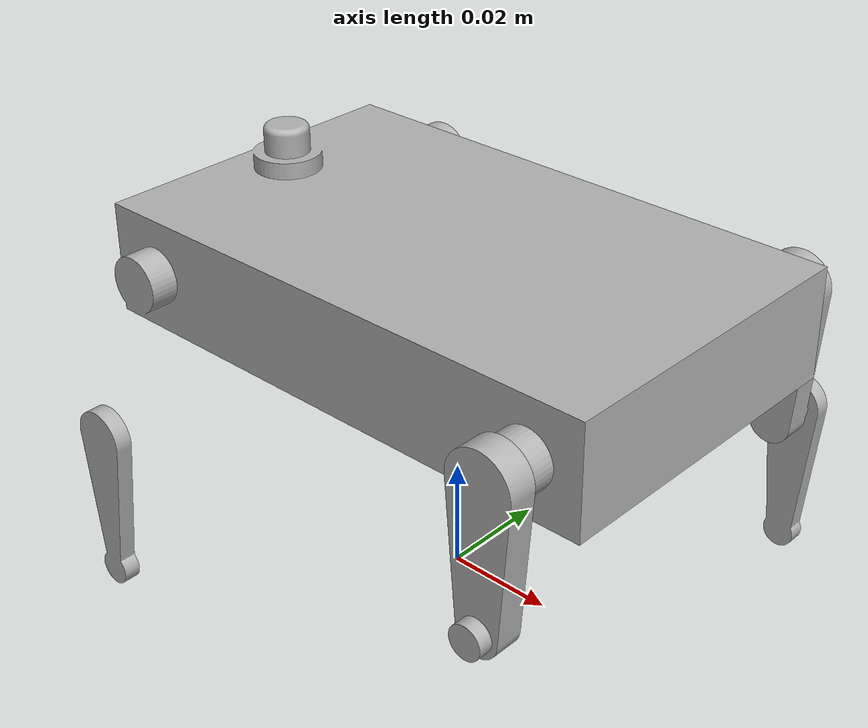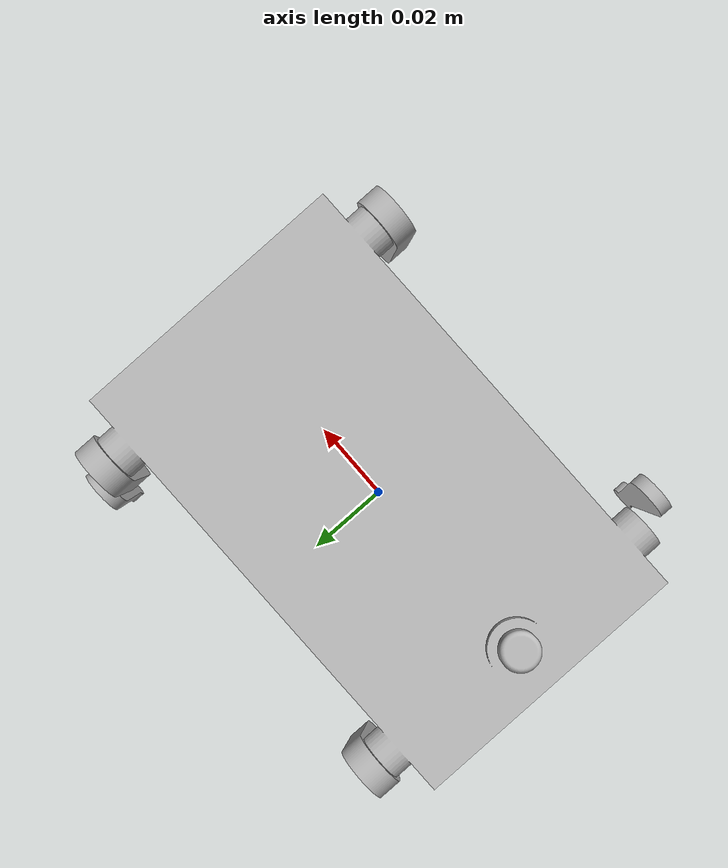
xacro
<?xml version="1.0" ?>
<robot name="dog3" xmlns:xacro="http://www.ros.org/wiki/xacro">

<xacro:include filename="$(find dog3_description)/urdf/materials.xacro" />
<xacro:include filename="$(find dog3_description)/urdf/dog3.trans" />
<xacro:include filename="$(find dog3_description)/urdf/dog3.gazebo" />

<link name="base_footprint"/>

<joint name="base_joint" type="fixed">
  <parent link="base_footprint"/>
  <child link="base_link"/>
  <origin xyz="0 0 0" rpy="0 0 0"/>
</joint>

<link name="base_link">
  <inertial>
    <origin xyz="-0.00011132532547241413 -4.662732972956323e-18 0.055032006031076684" rpy="0 0 0"/>
    <mass value="0.3291572385001325"/>
    <inertia ixx="0.000113" iyy="0.000289" izz="0.00038" ixy="-0.0" iyz="-0.0" ixz="0.0"/>
  </inertial>
  <visual>
    <origin xyz="0 0 0" rpy="0 0 0"/>
    <geometry>
      <mesh filename="package://dog3_description/meshes/base_link.stl" scale="0.001 0.001 0.001"/>
    </geometry>
    <material name="silver"/>
  </visual>
  <collision>
    <origin xyz="0 0 0" rpy="0 0 0"/>
    <geometry>
      <mesh filename="package://dog3_description/meshes/base_link.stl" scale="0.001 0.001 0.001"/>
    </geometry>
  </collision>
</link>

<link name="frontleft_leg1_1">
  <inertial>
    <origin xyz="-4.4959534238817045e-06 -0.0026529909027981774 -0.010990291442556657" rpy="0 0 0"/>
    <mass value="0.014553831322697403"/>
    <inertia ixx="1e-06" iyy="1e-06" izz="1e-06" ixy="0.0" iyz="-0.0" ixz="0.0"/>
  </inertial>
  <visual>
    <origin xyz="0.04 0.035 -0.055" rpy="0 0 0"/>
    <geometry>
      <mesh filename="package://dog3_description/meshes/frontleft_leg1_1.stl" scale="0.001 0.001 0.001"/>
    </geometry>
    <material name="silver"/>
  </visual>
  <collision>
    <origin xyz="0.04 0.035 -0.055" rpy="0 0 0"/>
    <geometry>
      <mesh filename="package://dog3_description/meshes/frontleft_leg1_1.stl" scale="0.001 0.001 0.001"/>
    </geometry>
  </collision>
</link>

<link name="frontright_leg1_1">
  <inertial>
    <origin xyz="-4.423121798220742e-06 0.0026529909027981705 -0.010989709317061773" rpy="0 0 0"/>
    <mass value="0.014553831322697407"/>
    <inertia ixx="1e-06" iyy="1e-06" izz="1e-06" ixy="-0.0" iyz="0.0" ixz="0.0"/>
  </inertial>
  <visual>
    <origin xyz="0.04 -0.035 -0.055" rpy="0 0 0"/>
    <geometry>
      <mesh filename="package://dog3_description/meshes/frontright_leg1_1.stl" scale="0.001 0.001 0.001"/>
    </geometry>
    <material name="silver"/>
  </visual>
  <collision>
    <origin xyz="0.04 -0.035 -0.055" rpy="0 0 0"/>
    <geometry>
      <mesh filename="package://dog3_description/meshes/frontright_leg1_1.stl" scale="0.001 0.001 0.001"/>
    </geometry>
  </collision>
</link>

<link name="rareleft_leg1_1">
  <inertial>
    <origin xyz="4.178672045329623e-06 -0.002652427713442977 -0.011037639322699376" rpy="0 0 0"/>
    <mass value="0.014607604765158601"/>
    <inertia ixx="1e-06" iyy="2e-06" izz="1e-06" ixy="0.0" iyz="-0.0" ixz="0.0"/>
  </inertial>
  <visual>
    <origin xyz="-0.04 0.035 -0.055" rpy="0 0 0"/>
    <geometry>
      <mesh filename="package://dog3_description/meshes/rareleft_leg1_1.stl" scale="0.001 0.001 0.001"/>
    </geometry>
    <material name="silver"/>
  </visual>
  <collision>
    <origin xyz="-0.04 0.035 -0.055" rpy="0 0 0"/>
    <geometry>
      <mesh filename="package://dog3_description/meshes/rareleft_leg1_1.stl" scale="0.001 0.001 0.001"/>
    </geometry>
  </collision>
</link>

<link name="rareright_leg1_1">
  <inertial>
    <origin xyz="4.1786720198153104e-06 0.002652427713442977 -0.011037639322699376" rpy="0 0 0"/>
    <mass value="0.014607604765158596"/>
    <inertia ixx="1e-06" iyy="2e-06" izz="1e-06" ixy="-0.0" iyz="0.0" ixz="0.0"/>
  </inertial>
  <visual>
    <origin xyz="-0.04 -0.035 -0.055" rpy="0 0 0"/>
    <geometry>
      <mesh filename="package://dog3_description/meshes/rareright_leg1_1.stl" scale="0.001 0.001 0.001"/>
    </geometry>
    <material name="silver"/>
  </visual>
  <collision>
    <origin xyz="-0.04 -0.035 -0.055" rpy="0 0 0"/>
    <geometry>
      <mesh filename="package://dog3_description/meshes/rareright_leg1_1.stl" scale="0.001 0.001 0.001"/>
    </geometry>
  </collision>
</link>

<link name="camera_1">
  <inertial>
    <origin xyz="-1.8011286906371993e-13 0.0 0.0024530306087636317" rpy="0 0 0"/>
    <mass value="0.0019329452635162968"/>
    <inertia ixx="1e-06" iyy="1e-06" izz="1e-06" ixy="-0.0" iyz="-0.0" ixz="0.0"/>
  </inertial>
  <visual>
    <origin xyz="0.04 -0.0 -0.068" rpy="0 0 0"/>
    <geometry>
      <mesh filename="package://dog3_description/meshes/camera_1.stl" scale="0.001 0.001 0.001"/>
    </geometry>
    <material name="silver"/>
  </visual>
  <collision>
    <origin xyz="0.04 -0.0 -0.068" rpy="0 0 0"/>
    <geometry>
      <mesh filename="package://dog3_description/meshes/camera_1.stl" scale="0.001 0.001 0.001"/>
    </geometry>
  </collision>
</link>

<link name="rareright_leg2_1">
  <inertial>
    <origin xyz="-4.903097504740939e-07 0.0014999999999999944 -0.01071668409042427" rpy="0 0 0"/>
    <mass value="0.00641846357082693"/>
    <inertia ixx="1e-06" iyy="1e-06" izz="1e-06" ixy="-0.0" iyz="0.0" ixz="0.0"/>
  </inertial>
  <visual>
    <origin xyz="-0.04001 -0.0425 -0.029882" rpy="0 0 0"/>
    <geometry>
      <mesh filename="package://dog3_description/meshes/rareright_leg2_1.stl" scale="0.001 0.001 0.001"/>
    </geometry>
    <material name="silver"/>
  </visual>
  <collision>
    <origin xyz="-0.04001 -0.0425 -0.029882" rpy="0 0 0"/>
    <geometry>
      <mesh filename="package://dog3_description/meshes/rareright_leg2_1.stl" scale="0.001 0.001 0.001"/>
    </geometry>
  </collision>
</link>

<link name="rareleft_leg2_1">
  <inertial>
    <origin xyz="-4.903097504740939e-07 -0.0014999999999999944 -0.010716684090424259" rpy="0 0 0"/>
    <mass value="0.00641846357082693"/>
    <inertia ixx="1e-06" iyy="1e-06" izz="1e-06" ixy="-0.0" iyz="0.0" ixz="0.0"/>
  </inertial>
  <visual>
    <origin xyz="-0.04001 0.0425 -0.029882" rpy="0 0 0"/>
    <geometry>
      <mesh filename="package://dog3_description/meshes/rareleft_leg2_1.stl" scale="0.001 0.001 0.001"/>
    </geometry>
    <material name="silver"/>
  </visual>
  <collision>
    <origin xyz="-0.04001 0.0425 -0.029882" rpy="0 0 0"/>
    <geometry>
      <mesh filename="package://dog3_description/meshes/rareleft_leg2_1.stl" scale="0.001 0.001 0.001"/>
    </geometry>
  </collision>
</link>

<link name="frontleft_leg2_1">
  <inertial>
    <origin xyz="2.128994332217804e-07 -0.0015000000000001262 -0.010295486686045224" rpy="0 0 0"/>
    <mass value="0.006007661790889966"/>
    <inertia ixx="1e-06" iyy="1e-06" izz="1e-06" ixy="-0.0" iyz="-0.0" ixz="-0.0"/>
  </inertial>
  <visual>
    <origin xyz="0.040002 0.0425 -0.029986" rpy="0 0 0"/>
    <geometry>
      <mesh filename="package://dog3_description/meshes/frontleft_leg2_1.stl" scale="0.001 0.001 0.001"/>
    </geometry>
    <material name="silver"/>
  </visual>
  <collision>
    <origin xyz="0.040002 0.0425 -0.029986" rpy="0 0 0"/>
    <geometry>
      <mesh filename="package://dog3_description/meshes/frontleft_leg2_1.stl" scale="0.001 0.001 0.001"/>
    </geometry>
  </collision>
</link>

<link name="frontright_leg2_1">
  <inertial>
    <origin xyz="-1.90492945723042e-09 0.0014999999999998695 -0.01029521805591158" rpy="0 0 0"/>
    <mass value="0.006007661790889966"/>
    <inertia ixx="1e-06" iyy="1e-06" izz="1e-06" ixy="-0.0" iyz="-0.0" ixz="-0.0"/>
  </inertial>
  <visual>
    <origin xyz="0.04 -0.0425 -0.03" rpy="0 0 0"/>
    <geometry>
      <mesh filename="package://dog3_description/meshes/frontright_leg2_1.stl" scale="0.001 0.001 0.001"/>
    </geometry>
    <material name="silver"/>
  </visual>
  <collision>
    <origin xyz="0.04 -0.0425 -0.03" rpy="0 0 0"/>
    <geometry>
      <mesh filename="package://dog3_description/meshes/frontright_leg2_1.stl" scale="0.001 0.001 0.001"/>
    </geometry>
  </collision>
</link>

<joint name="Revolute 1" type="revolute">
  <origin xyz="-0.04 -0.035 0.055" rpy="0 0 0"/>
  <parent link="base_link"/>
  <child link="frontleft_leg1_1"/>
  <axis xyz="0.0 -1.0 0.0"/>
  <limit upper="1.570796" lower="-1.570796" effort="100" velocity="100"/>
</joint>

<joint name="Revolute 2" type="revolute">
  <origin xyz="-0.04 0.035 0.055" rpy="0 0 0"/>
  <parent link="base_link"/>
  <child link="frontright_leg1_1"/>
  <axis xyz="0.0 1.0 0.0"/>
  <limit upper="1.570796" lower="-1.570796" effort="100" velocity="100"/>
</joint>

<joint name="Revolute 3" type="revolute">
  <origin xyz="0.04 -0.035 0.055" rpy="0 0 0"/>
  <parent link="base_link"/>
  <child link="rareleft_leg1_1"/>
  <axis xyz="0.0 -1.0 0.0"/>
  <limit upper="1.570796" lower="-1.570796" effort="100" velocity="100"/>
</joint>

<joint name="Revolute 4" type="revolute">
  <origin xyz="0.04 0.035 0.055" rpy="0 0 0"/>
  <parent link="base_link"/>
  <child link="rareright_leg1_1"/>
  <axis xyz="0.0 1.0 0.0"/>
  <limit upper="1.570796" lower="-1.570796" effort="100" velocity="100"/>
</joint>

<joint name="Rigid 5" type="fixed">
  <origin xyz="-0.04 0.0 0.068" rpy="0 0 0"/>
  <parent link="base_link"/>
  <child link="camera_1"/>
</joint>

<joint name="Revolute 6" type="revolute">
  <origin xyz="1e-05 0.0075 -0.025118" rpy="0 0 0"/>
  <parent link="rareright_leg1_1"/>
  <child link="rareright_leg2_1"/>
  <axis xyz="0.0 1.0 0.0"/>
  <limit upper="1.570796" lower="-1.570796" effort="100" velocity="100"/>
</joint>

<joint name="Revolute 7" type="revolute">
  <origin xyz="1e-05 -0.0075 -0.025118" rpy="0 0 0"/>
  <parent link="rareleft_leg1_1"/>
  <child link="rareleft_leg2_1"/>
  <axis xyz="0.0 -1.0 0.0"/>
  <limit upper="1.570796" lower="-1.570796" effort="100" velocity="100"/>
</joint>

<joint name="Revolute 8" type="revolute">
  <origin xyz="-2e-06 -0.0075 -0.025014" rpy="0 0 0"/>
  <parent link="frontleft_leg1_1"/>
  <child link="frontleft_leg2_1"/>
  <axis xyz="0.0 -1.0 0.0"/>
  <limit upper="1.570796" lower="-1.570796" effort="100" velocity="100"/>
</joint>

<joint name="Revolute 9" type="revolute">
  <origin xyz="0.0 0.0075 -0.025" rpy="0 0 0"/>
  <parent link="frontright_leg1_1"/>
  <child link="frontright_leg2_1"/>
  <axis xyz="0.0 1.0 0.0"/>
  <limit upper="1.570796" lower="-1.570796" effort="100" velocity="100"/>
</joint>

</robot>

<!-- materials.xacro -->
<robot name="dog3" xmlns:xacro="http://www.ros.org/wiki/xacro" >

<material name="silver">
  <color rgba="0.700 0.700 0.700 1.000"/>
</material>

</robot>

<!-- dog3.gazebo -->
<robot name="dog3" xmlns:xacro="http://www.ros.org/wiki/xacro" >

<xacro:property name="body_color" value="Gazebo/Silver" />

<ros2_control name="GazeboSimSystem" type="system">
  <hardware>
    <plugin>gz_ros2_control/GazeboSimSystem</plugin>
  </hardware>
  <joint name="Revolute 1">
    <command_interface name="position"/>
    <state_interface name="position"/>
    <state_interface name="velocity"/>
  </joint>
  <joint name="Revolute 2">
    <command_interface name="position"/>
    <state_interface name="position"/>
    <state_interface name="velocity"/>
  </joint>
  <joint name="Revolute 3">
    <command_interface name="position"/>
    <state_interface name="position"/>
    <state_interface name="velocity"/>
  </joint>
  <joint name="Revolute 4">
    <command_interface name="position"/>
    <state_interface name="position"/>
    <state_interface name="velocity"/>
  </joint>
  <joint name="Revolute 6">
    <command_interface name="position"/>
    <state_interface name="position"/>
    <state_interface name="velocity"/>
  </joint>
  <joint name="Revolute 7">
    <command_interface name="position"/>
    <state_interface name="position"/>
    <state_interface name="velocity"/>
  </joint>
  <joint name="Revolute 8">
    <command_interface name="position"/>
    <state_interface name="position"/>
    <state_interface name="velocity"/>
  </joint>
  <joint name="Revolute 9">
    <command_interface name="position"/>
    <state_interface name="position"/>
    <state_interface name="velocity"/>
  </joint>
</ros2_control>

<gazebo>
  <plugin filename="gz_ros2_control-system" name="gz_ros2_control::GazeboSimROS2ControlPlugin">
    <parameters>$(find dog3_description)/config/controllers.yaml</parameters>
  </plugin>
  <plugin filename="gz-sim-joint-state-publisher-system" name="gz::sim::systems::JointStatePublisher"/>
</gazebo>

<gazebo reference="base_link">
  <material>${body_color}</material>
  <mu1>0.2</mu1>
  <mu2>0.2</mu2>
  <selfCollide>true</selfCollide>
  <gravity>true</gravity>
</gazebo>

<gazebo reference="frontleft_leg1_1">
  <material>${body_color}</material>
  <mu1>0.2</mu1>
  <mu2>0.2</mu2>
  <selfCollide>true</selfCollide>
</gazebo>

<gazebo reference="frontright_leg1_1">
  <material>${body_color}</material>
  <mu1>0.2</mu1>
  <mu2>0.2</mu2>
  <selfCollide>true</selfCollide>
</gazebo>

<gazebo reference="rareleft_leg1_1">
  <material>${body_color}</material>
  <mu1>0.2</mu1>
  <mu2>0.2</mu2>
  <selfCollide>true</selfCollide>
</gazebo>

<gazebo reference="rareright_leg1_1">
  <material>${body_color}</material>
  <mu1>0.2</mu1>
  <mu2>0.2</mu2>
  <selfCollide>true</selfCollide>
</gazebo>

<gazebo reference="camera_1">
  <material>${body_color}</material>
  <mu1>0.2</mu1>
  <mu2>0.2</mu2>
  <selfCollide>true</selfCollide>
  <sensor name="camera" type="camera">
    <pose> 0 0 0 0 0 0 </pose>
    <visualize>true</visualize>
    <update_rate>10</update_rate>
    <camera>
      <horizontal_fov>1.089</horizontal_fov>
      <image>
        <format>R8G8B8</format>
        <width>640</width>
        <height>480</height>
      </image>
      <clip>
        <near>0.05</near>
        <far>8.0</far>
      </clip>
    </camera>
    <topic>camera/image_raw</topic>
  </sensor>
</gazebo>

<gazebo reference="rareright_leg2_1">
  <material>${body_color}</material>
  <mu1>0.2</mu1>
  <mu2>0.2</mu2>
  <selfCollide>true</selfCollide>
</gazebo>

<gazebo reference="rareleft_leg2_1">
  <material>${body_color}</material>
  <mu1>0.2</mu1>
  <mu2>0.2</mu2>
  <selfCollide>true</selfCollide>
</gazebo>

<gazebo reference="frontleft_leg2_1">
  <material>${body_color}</material>
  <mu1>0.2</mu1>
  <mu2>0.2</mu2>
  <selfCollide>true</selfCollide>
</gazebo>

<gazebo reference="frontright_leg2_1">
  <material>${body_color}</material>
  <mu1>0.2</mu1>
  <mu2>0.2</mu2>
  <selfCollide>true</selfCollide>
</gazebo>

</robot>
